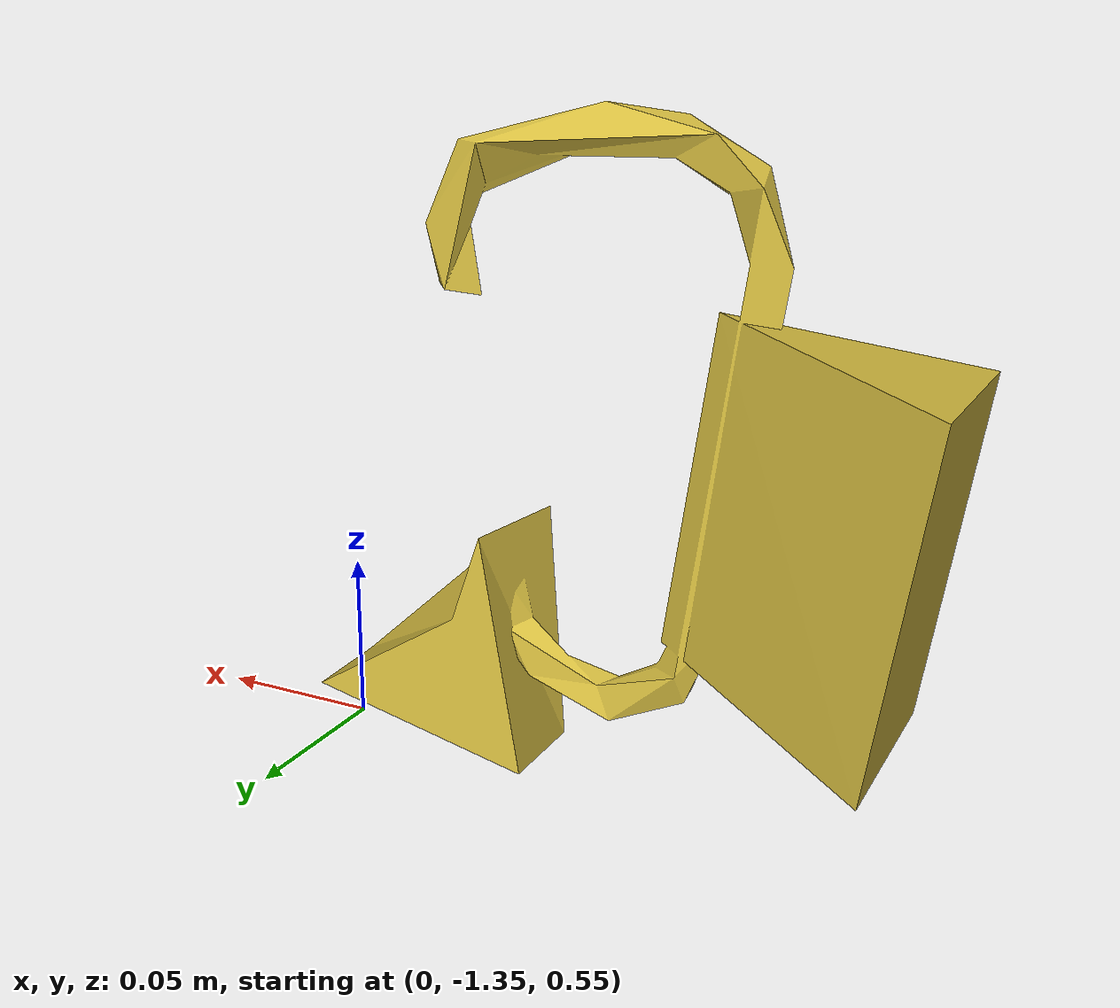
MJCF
<mujoco model="left_carabiner">
  <compiler inertiafromgeom="auto"/>
  <default>
    <default class="lcar_visual">
      <geom group="2" type="mesh" contype="0" conaffinity="0"/>
    </default>
    <default class="lcar_collision">
      <!-- contype=2 (carabiner bit); conaffinity=5 = grippers(1) | handles(4) -->
      <geom group="3" type="capsule" mass="0" contype="2" conaffinity="5"/>
    </default>
  </default>
  <asset>
    <mesh name="lcar_visual_mesh" file="simplified/simplified_carabiner/simplified_carabiner.obj" scale="0.001 0.001 0.001"/>
  </asset>
  <worldbody>
    <body name="left_carabiner" pos="-0.0877875 -1.3400125 0.6557975" quat="0.5 0.5 -0.5 -0.5">
      <freejoint/>
      <inertial pos="-0.006263 -0.034070 -0.030525" mass="0.242"
                quat="0.698782 0.129047 -0.667590 -0.222204"
                diaginertia="4.268038e-04 6.904647e-04 1.036829e-03"/>
      <geom mesh="lcar_visual_mesh" class="lcar_visual" rgba="0.85 0.75 0.25 1"/>
      <!-- 4-capsule decomposition: top arc, gate-inner, spine, bottom diagonal -->
      <geom class="lcar_collision" fromto="-0.00199  0.07200 -0.04200  -0.00199  0.07200  0.03800" size="0.01500"/>
      <geom class="lcar_collision" fromto="-0.00199  0.05000 -0.04200  -0.00199  0.03200 -0.04200" size="0.01100"/>
      <geom class="lcar_collision" fromto="-0.01692 -0.07000  0.05000  -0.01692  0.02200  0.05000" size="0.04000"/>
      <geom class="lcar_collision" fromto=" 0.00000 -0.07000 -0.06000   0.00000 -0.04000 -0.01000" size="0.02400"/>
    </body>
  </worldbody>
</mujoco>
